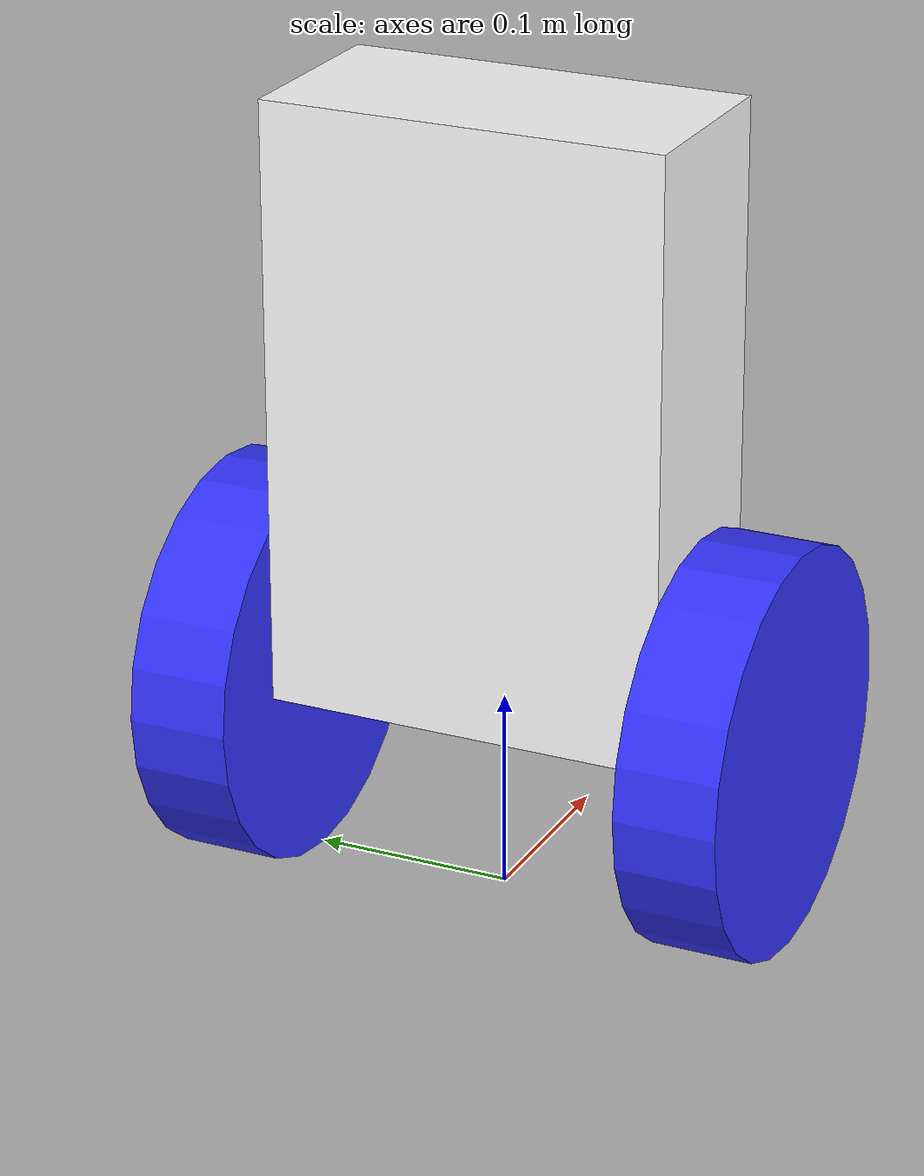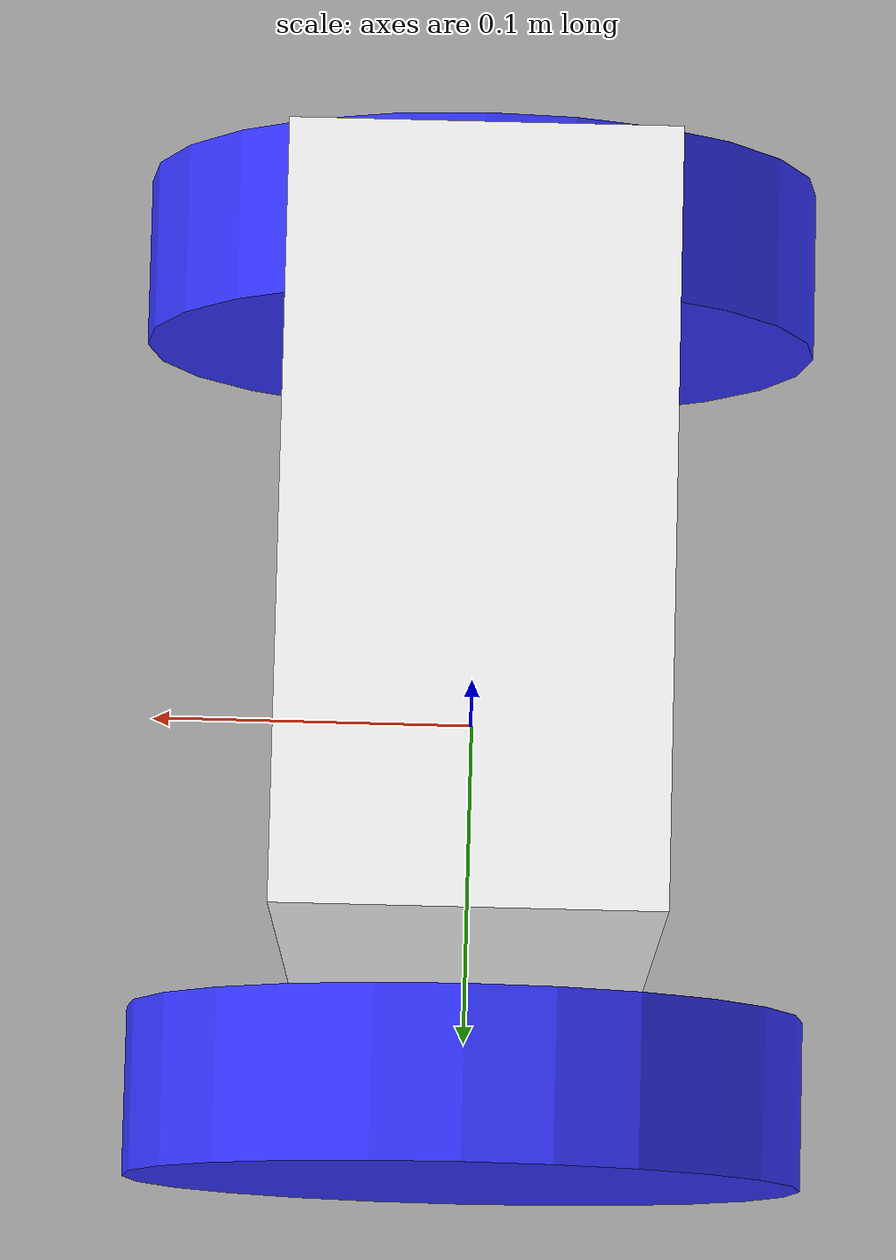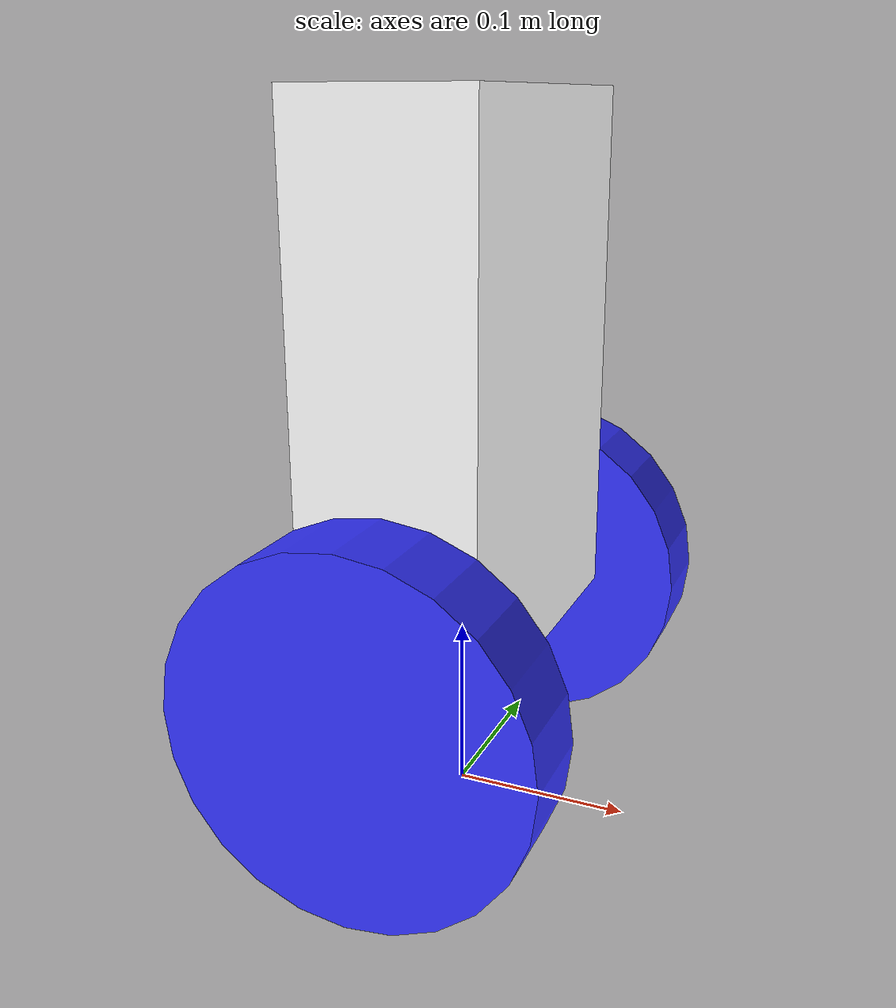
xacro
<?xml version="1.0"?>
<robot xmlns:xacro="http://www.ros.org/wiki/xacro"  name="balance_bot">

<xacro:include filename="inertial_macros.xacro" />

<material name ="white">
<color rgba="1 1 1 1"/>
</material>
<material name ="orange">
    <color rgba="1 0.3 0.1 1"/>
</material>
<material name ="blue">
    <color rgba="0.2 0.2 1 1"/>
</material>
<material name ="black">
    <color rgba="0 0 0 1"/>
</material>

<!-- base link -->
<link name ="base_link">
</link>

<!-- chassis -->
<joint name ="chassis_joint" type="fixed">
    <parent link="base_link"/>
    <child link="chassis"/>
    <origin xyz="0 0 0.1"/>
</joint>
<link name ="chassis">
    <visual>
        <origin xyz="0 0 0.15"/>
        <geometry>
            <box size="0.1 0.2 0.3"/>
        </geometry>
        <material name="white"/>
    </visual>
    <collision>
        <origin xyz="0 0 0.15"/>
        <geometry>
            <box size="0.1 0.2 0.3"/>
        </geometry>
    </collision>
    <xacro:inertial_box mass="0.5" x="0.1" y="0.2" z="0.15">
        <origin xyz="0 0 0.15"/>
    </xacro:inertial_box>
</link>
<gazebo refrence="chassis">
    <material>Gazebo/white</material>
</gazebo>

<!-- right wheel -->
<joint name ="right_wheel_joint" type="continuous">
    <parent link="base_link"/>
    <child link="right_wheel"/>
    <origin xyz="0 -0.125 0.1" rpy="${pi/2} 0 0"/>
    <axis xyz="0 0 -1"></axis>
</joint>
<link name ="right_wheel">
    <visual>
        <geometry>
            <cylinder radius="0.1" length="0.05"/>
        </geometry>
        <material name="blue"/>
    </visual>
    <collision>
        <geometry>
            <cylinder radius="0.1" length="0.05"/>
        </geometry>
        <surface>
            <friction>
                <ode>
                    <mu>1.0</mu>      <mu2>1.0</mu2>
                </ode>
            </friction>
        </surface>
    </collision>
    <xacro:inertial_cylinder mass="0.1" length="0.05" radius="0.1">
        <origin xyz="0 0 0" rpy="0 0 0"/>
    </xacro:inertial_cylinder>
</link>
<gazebo refrence="right_wheel">
    <mu1>0.2</mu1>
    <mu2>0.2</mu2>
    <material>Gazebo/blue</material>
</gazebo>

<!-- left wheel -->
<joint name ="left_wheel_joint" type="continuous">
    <parent link="base_link"/>
    <child link="left_wheel"/>
    <origin xyz="0 0.125 0.1" rpy="-${pi/2} 0 0"/>
    <axis xyz="0 0 1"></axis>
</joint>
<link name ="left_wheel">
    <visual>
        <geometry>
            <cylinder radius="0.1" length="0.05"/>
        </geometry>
        <material name="blue"/>
    </visual>
    <collision>
        <geometry>
            <cylinder radius="0.1" length="0.05"/>
        </geometry>
        <surface>
            <friction>
                <ode>
                    <mu>1.0</mu>      <mu2>1.0</mu2>
                </ode>
            </friction>
        </surface>
    </collision>
    <xacro:inertial_cylinder mass="0.1" length="0.05" radius="0.1">
        <origin xyz="0 0 0" rpy="0 0 0"/>
    </xacro:inertial_cylinder>
</link>
<gazebo refrence="left_wheel">
    <mu1>0.2</mu1>
    <mu2>0.2</mu2>
    <material>Gazebo/blue</material>
</gazebo>

</robot>
